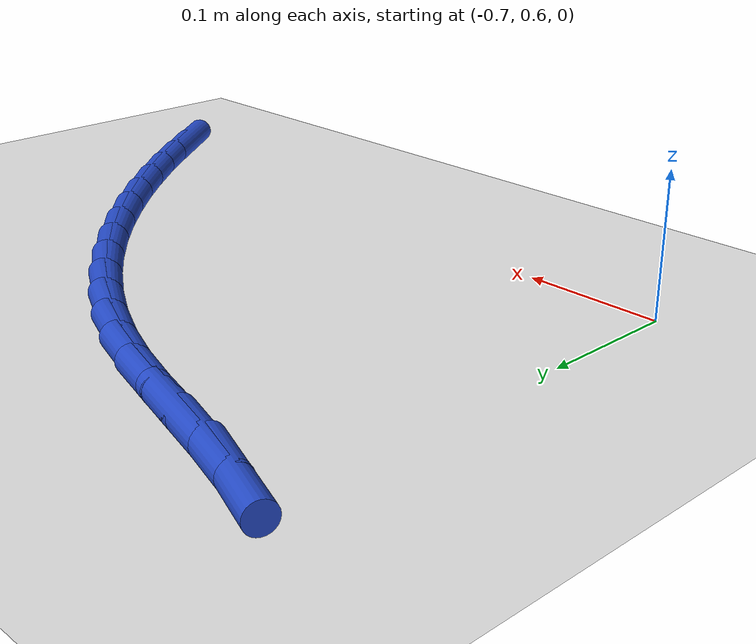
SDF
<sdf version="1.6">
 <world name="default">
  <model name="ground_plane">
   <static>1</static>
   <link name="link">
    <collision name="collision">
     <geometry><plane><normal>0 0 1</normal><size>100 100</size></plane></geometry>
     <surface><friction><ode><mu>100</mu><mu2>50</mu2></ode></friction></surface>
    </collision>
    <visual name="visual">
     <cast_shadows>0</cast_shadows>
     <geometry><plane><normal>0 0 1</normal><size>100 100</size></plane></geometry>
     <material>
      <script><uri>file://media/materials/scripts/gazebo.material</uri><name>Gazebo/WhiteGlow</name></script>
     </material>
    </visual>
   </link>
  </model>
  <model name="line">
   <link name="link_18">
    <pose>-0.19543803339156413 0.59240709263391 0.01 0 1.57 -0.9436973816188705</pose>
    <collision name="collision">
     <geometry><cylinder><radius>0.01</radius><length>0.08</length></cylinder></geometry>
    </collision>
    <visual name="visual">
     <material>
      <script><name>Gazebo/Blue</name><uri>file://media/materials/scripts/gazebo.material</uri></script>
     </material>
     <geometry><cylinder><radius>0.01</radius><length>0.08</length></cylinder></geometry>
    </visual>
   </link>
   <link name="link_19">
    <pose>-0.21656862724549292 0.6215655764697207 0.01 0 1.57 -0.9163910836548914</pose>
    <collision name="collision">
     <geometry><cylinder><radius>0.01</radius><length>0.08</length></cylinder></geometry>
    </collision>
    <visual name="visual">
     <material>
      <script><name>Gazebo/Blue</name><uri>file://media/materials/scripts/gazebo.material</uri></script>
     </material>
     <geometry><cylinder><radius>0.01</radius><length>0.08</length></cylinder></geometry>
    </visual>
   </link>
   <link name="link_20">
    <pose>-0.2385894137453627 0.6502691644251356 0.01 0 1.57 -0.8860877698987994</pose>
    <collision name="collision">
     <geometry><cylinder><radius>0.01</radius><length>0.08</length></cylinder></geometry>
    </collision>
    <visual name="visual">
     <material>
      <script><name>Gazebo/Blue</name><uri>file://media/materials/scripts/gazebo.material</uri></script>
     </material>
     <geometry><cylinder><radius>0.01</radius><length>0.08</length></cylinder></geometry>
    </visual>
   </link>
   <link name="link_21">
    <pose>-0.26151484893691174 0.678347583774905 0.01 0 1.57 -0.8524603840495918</pose>
    <collision name="collision">
     <geometry><cylinder><radius>0.01</radius><length>0.08</length></cylinder></geometry>
    </collision>
    <visual name="visual">
     <material>
      <script><name>Gazebo/Blue</name><uri>file://media/materials/scripts/gazebo.material</uri></script>
     </material>
     <geometry><cylinder><radius>0.01</radius><length>0.08</length></cylinder></geometry>
    </visual>
   </link>
   <link name="link_22">
    <pose>-0.2853604054189903 0.7056268322466858 0.01 0 1.57 -0.8152387404536157</pose>
    <collision name="collision">
     <geometry><cylinder><radius>0.01</radius><length>0.08</length></cylinder></geometry>
    </collision>
    <visual name="visual">
     <material>
      <script><name>Gazebo/Blue</name><uri>file://media/materials/scripts/gazebo.material</uri></script>
     </material>
     <geometry><cylinder><radius>0.01</radius><length>0.08</length></cylinder></geometry>
    </visual>
   </link>
   <link name="link_23">
    <pose>-0.3101415557904487 0.7319329075681348 0.01 0 1.57 -0.774133079321631</pose>
    <collision name="collision">
     <geometry><cylinder><radius>0.01</radius><length>0.08</length></cylinder></geometry>
    </collision>
    <visual name="visual">
     <material>
      <script><name>Gazebo/Blue</name><uri>file://media/materials/scripts/gazebo.material</uri></script>
     </material>
     <geometry><cylinder><radius>0.01</radius><length>0.08</length></cylinder></geometry>
    </visual>
   </link>
   <link name="link_24">
    <pose>-0.3358737726501376 0.7570918074669097 0.01 0 1.57 -0.7288452907351434</pose>
    <collision name="collision">
     <geometry><cylinder><radius>0.01</radius><length>0.08</length></cylinder></geometry>
    </collision>
    <visual name="visual">
     <material>
      <script><name>Gazebo/Blue</name><uri>file://media/materials/scripts/gazebo.material</uri></script>
     </material>
     <geometry><cylinder><radius>0.01</radius><length>0.08</length></cylinder></geometry>
    </visual>
   </link>
   <link name="link_25">
    <pose>-0.362572528596907 0.7809295296706673 0.01 0 1.57 -0.6790857506434033</pose>
    <collision name="collision">
     <geometry><cylinder><radius>0.01</radius><length>0.08</length></cylinder></geometry>
    </collision>
    <visual name="visual">
     <material>
      <script><name>Gazebo/Blue</name><uri>file://media/materials/scripts/gazebo.material</uri></script>
     </material>
     <geometry><cylinder><radius>0.01</radius><length>0.08</length></cylinder></geometry>
    </visual>
   </link>
   <link name="link_26">
    <pose>-0.39025329622960775 0.8032720719070652 0.01 0 1.57 -0.6245973608186239</pose>
    <collision name="collision">
     <geometry><cylinder><radius>0.01</radius><length>0.08</length></cylinder></geometry>
    </collision>
    <visual name="visual">
     <material>
      <script><name>Gazebo/Blue</name><uri>file://media/materials/scripts/gazebo.material</uri></script>
     </material>
     <geometry><cylinder><radius>0.01</radius><length>0.08</length></cylinder></geometry>
    </visual>
   </link>
   <link name="link_27">
    <pose>-0.41893154814709 0.8239454319037602 0.01 0 1.57 -0.5651879689845339</pose>
    <collision name="collision">
     <geometry><cylinder><radius>0.01</radius><length>0.08</length></cylinder></geometry>
    </collision>
    <visual name="visual">
     <material>
      <script><name>Gazebo/Blue</name><uri>file://media/materials/scripts/gazebo.material</uri></script>
     </material>
     <geometry><cylinder><radius>0.01</radius><length>0.08</length></cylinder></geometry>
    </visual>
   </link>
   <link name="link_28">
    <pose>-0.44862275694820414 0.8427756073884094 0.01 0 1.57 -0.5007711842867857</pose>
    <collision name="collision">
     <geometry><cylinder><radius>0.01</radius><length>0.08</length></cylinder></geometry>
    </collision>
    <visual name="visual">
     <material>
      <script><name>Gazebo/Blue</name><uri>file://media/materials/scripts/gazebo.material</uri></script>
     </material>
     <geometry><cylinder><radius>0.01</radius><length>0.08</length></cylinder></geometry>
    </visual>
   </link>
   <link name="link_29">
    <pose>-0.4793423952318004 0.8595885960886702 0.01 0 1.57 -0.4314133885231121</pose>
    <collision name="collision">
     <geometry><cylinder><radius>0.01</radius><length>0.08</length></cylinder></geometry>
    </collision>
    <visual name="visual">
     <material>
      <script><name>Gazebo/Blue</name><uri>file://media/materials/scripts/gazebo.material</uri></script>
     </material>
     <geometry><cylinder><radius>0.01</radius><length>0.08</length></cylinder></geometry>
    </visual>
   </link>
   <link name="link_30">
    <pose>-0.5111059355967295 0.8742103957321994 0.01 0 1.57 -0.35740596119619195</pose>
    <collision name="collision">
     <geometry><cylinder><radius>0.01</radius><length>0.08</length></cylinder></geometry>
    </collision>
    <visual name="visual">
     <material>
      <script><name>Gazebo/Blue</name><uri>file://media/materials/scripts/gazebo.material</uri></script>
     </material>
     <geometry><cylinder><radius>0.01</radius><length>0.08</length></cylinder></geometry>
    </visual>
   </link>
   <link name="link_31">
    <pose>-0.543928541942957 0.8864678068465407 0.01 0 1.57 -0.28927580626145466</pose>
    <collision name="collision">
     <geometry><cylinder><radius>0.01</radius><length>0.08</length></cylinder></geometry>
    </collision>
    <visual name="visual">
     <material>
      <script><name>Gazebo/Blue</name><uri>file://media/materials/scripts/gazebo.material</uri></script>
     </material>
     <geometry><cylinder><radius>0.01</radius><length>0.08</length></cylinder></geometry>
    </visual>
   </link>
   <link name="link_32">
    <pose>-0.5776981626372233 0.8965184656722677 0.01 0 1.57 -0.25238562214267</pose>
    <collision name="collision">
     <geometry><cylinder><radius>0.01</radius><length>0.08</length></cylinder></geometry>
    </collision>
    <visual name="visual">
     <material>
      <script><name>Gazebo/Blue</name><uri>file://media/materials/scripts/gazebo.material</uri></script>
     </material>
     <geometry><cylinder><radius>0.01</radius><length>0.08</length></cylinder></geometry>
    </visual>
   </link>
   <link name="link_33">
    <pose>-0.6119800400102237 0.9053592352238206 0.01 0 1.57 -0.2499535344653592</pose>
    <collision name="collision">
     <geometry><cylinder><radius>0.01</radius><length>0.08</length></cylinder></geometry>
    </collision>
    <visual name="visual">
     <material>
      <script><name>Gazebo/Blue</name><uri>file://media/materials/scripts/gazebo.material</uri></script>
     </material>
     <geometry><cylinder><radius>0.01</radius><length>0.08</length></cylinder></geometry>
    </visual>
   </link>
   <link name="link_34">
    <pose>-0.6462890133444913 0.914118056285425 0.01 0 1.57 -0.2819317547828635</pose>
    <collision name="collision">
     <geometry><cylinder><radius>0.01</radius><length>0.08</length></cylinder></geometry>
    </collision>
    <visual name="visual">
     <material>
      <script><name>Gazebo/Blue</name><uri>file://media/materials/scripts/gazebo.material</uri></script>
     </material>
     <geometry><cylinder><radius>0.01</radius><length>0.08</length></cylinder></geometry>
    </visual>
   </link>
   <link name="link_35">
    <pose>-0.6801399219225605 0.9239228696413063 0.01 0 1.57 -0.3491015196145687</pose>
    <collision name="collision">
     <geometry><cylinder><radius>0.01</radius><length>0.08</length></cylinder></geometry>
    </collision>
    <visual name="visual">
     <material>
      <script><name>Gazebo/Blue</name><uri>file://media/materials/scripts/gazebo.material</uri></script>
     </material>
     <geometry><cylinder><radius>0.01</radius><length>0.08</length></cylinder></geometry>
    </visual>
   </link>
  </model>
 </world>
</sdf>
